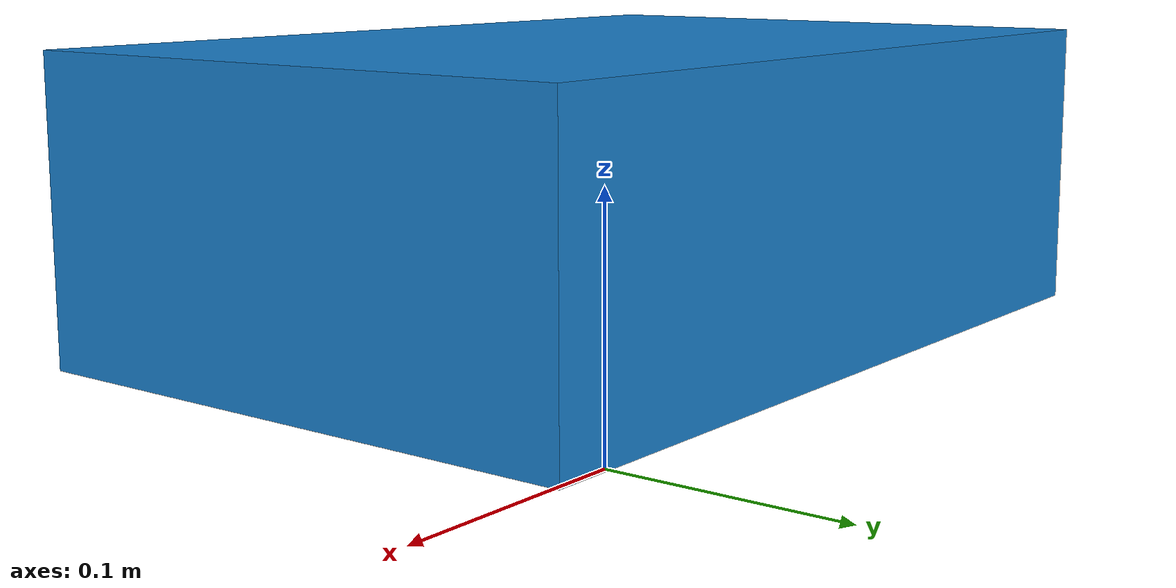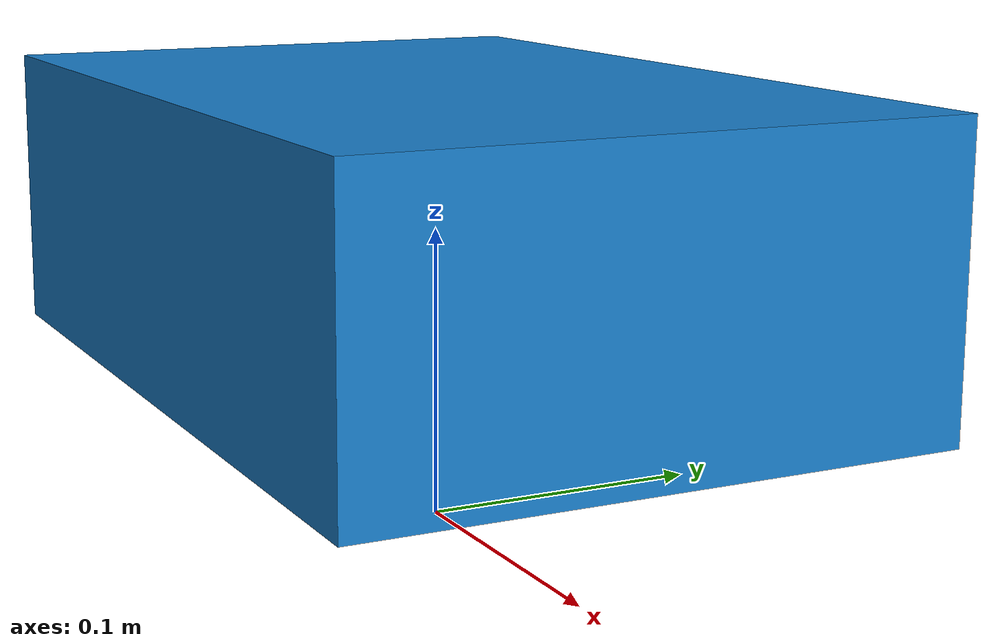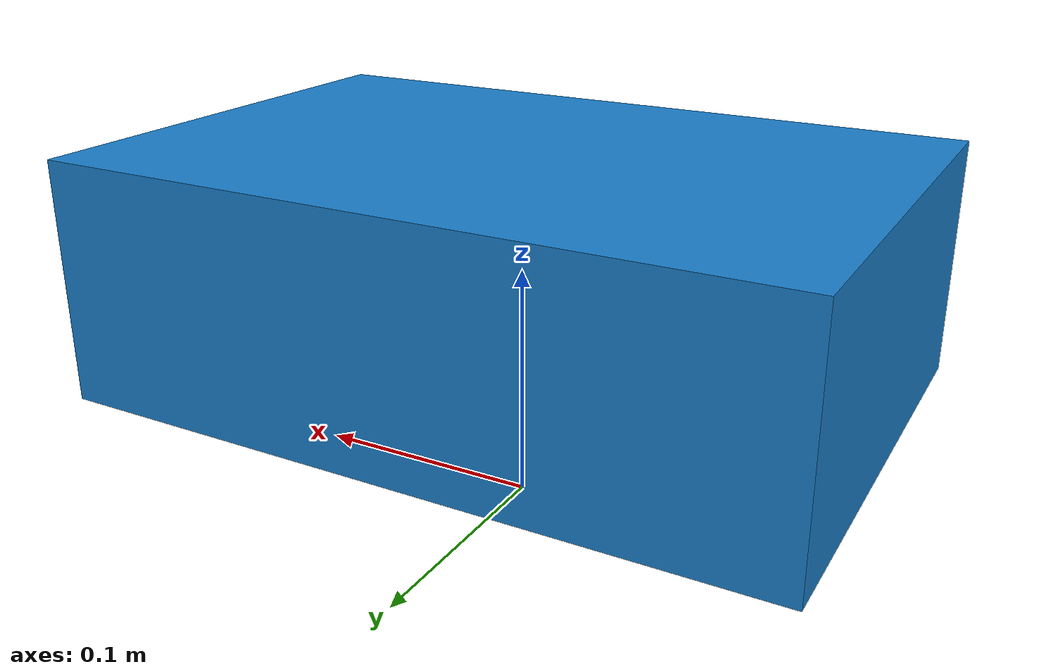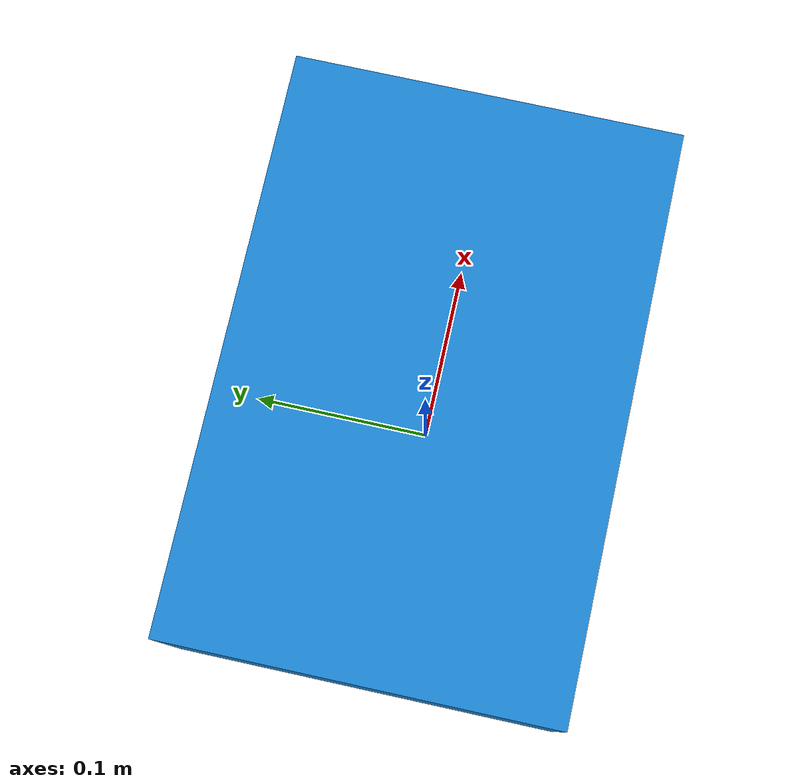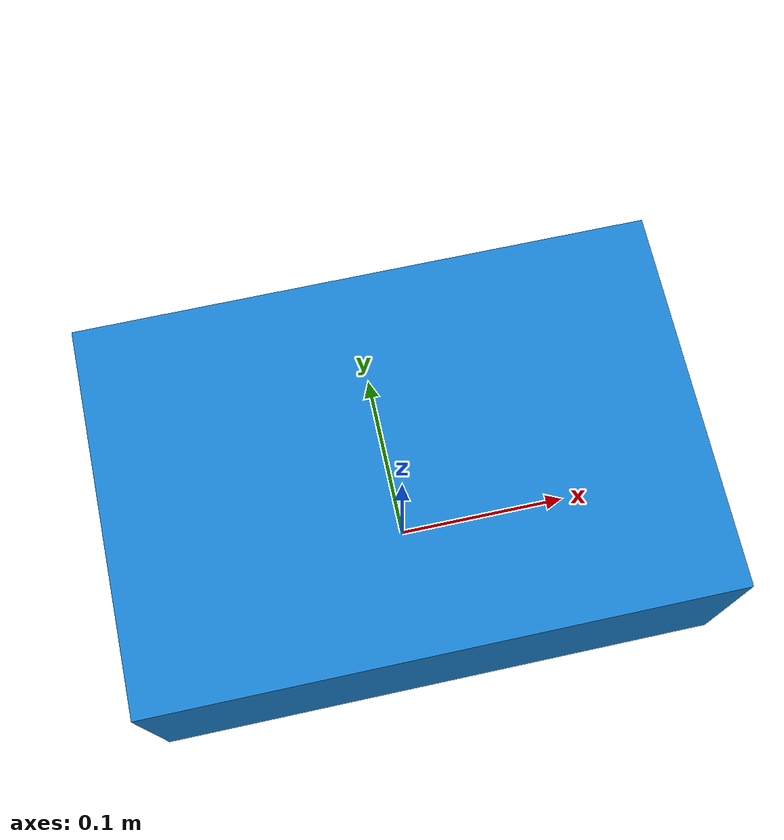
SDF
<?xml version="1.0" ?>
<sdf version="1.7">
  <model name="simple_robot">
    <static>false</static>

    <!-- Base Link -->
    <link name="base_link">
      <pose>0 0 0.1 0 0 0</pose>

      <!-- Visual (for debugging) -->
      <visual name="base_visual">
        <geometry>
          <box><size>0.3 0.2 0.1</size></box>
        </geometry>
        <material><ambient>0.1 0.5 0.8 1</ambient></material>
      </visual>

      <!-- Collision (basic for physics) -->
      <collision name="base_collision">
        <geometry>
          <box><size>0.3 0.2 0.1</size></box>
        </geometry>
      </collision>
    </link>

    <!-- IMU Sensor -->
    <link name="imu_link">
      <sensor name="imu_sensor" type="imu">
        <pose>0 0 0.0 0 0 0</pose>
        <always_on>true</always_on>
        <update_rate>100</update_rate>
        <imu>
          <angular_velocity>
            <noise type="gaussian">
              <mean>0.0</mean>
              <stddev>0.01</stddev> <!-- Increased for realistic motion -->
            </noise>
          </angular_velocity>
          <linear_acceleration>
            <noise type="gaussian">
              <mean>0.0</mean>
              <stddev>0.1</stddev> <!-- Increased for better simulation -->
            </noise>
          </linear_acceleration>
        </imu>

        <!-- ROS 2 IMU Plugin -->
        <plugin name="imu_plugin" filename="libgazebo_ros_imu_sensor.so">
          <ros>
            <namespace>/robot</namespace>
            <remapping>~/out:=imu</remapping>
          </ros>
          <frame_name>imu_link</frame_name>
          <update_rate>100.0</update_rate>
          <gaussian_noise>0.01</gaussian_noise>

          <!-- Added parameters for better simulation -->
          <initial_orientation_as_reference>false</initial_orientation_as_reference>
          <xyz_offset>0 0 0</xyz_offset>
          <rpy_offset>0 0 0</rpy_offset>
        </plugin>
      </sensor>
    </link>

    <!-- GPS Sensor -->
<link name="gps_link">
  <sensor name="gps_sensor" type="gps">
    <pose>0 0 0.2 0 0 0</pose>
    <always_on>true</always_on>
    <update_rate>10</update_rate>
    <gps>
      <position_sensing>
        <horizontal>
          <noise type="gaussian">
            <mean>0.0</mean>
            <stddev>0.5</stddev>
          </noise>
        </horizontal>
        <vertical>
          <noise type="gaussian">
            <mean>0.0</mean>
            <stddev>0.1</stddev>
          </noise>
        </vertical>
      </position_sensing>
      <reference_altitude>0.0</reference_altitude>
    </gps>

    <!-- ROS 2 GPS Plugin -->
    <plugin name="gps_plugin" filename="libgazebo_ros_gps_sensor.so">
      <ros>
        <namespace>/robot</namespace>
        <remapping>~/fix:=gps</remapping> <!-- Corrected from ~/out -->
        <remapping>~/vel:=gps_vel</remapping>
      </ros>
      <frame_name>gps_link</frame_name>
    </plugin>
  </sensor>
</link>

    <!-- Fixed Joint between Base and IMU -->
    <joint name="imu_joint" type="fixed">
      <parent>base_link</parent>
      <child>imu_link</child>
      <pose>0 0 0.1 0 0 0</pose>
    </joint>

    <!-- Fixed Joint between Base and IMU -->
    <joint name="gps_joint" type="fixed">
      <parent>base_link</parent>
      <child>gps_link</child>
      <pose>0 0 0.2 0 0 0</pose>
    </joint>

  </model>
</sdf>
